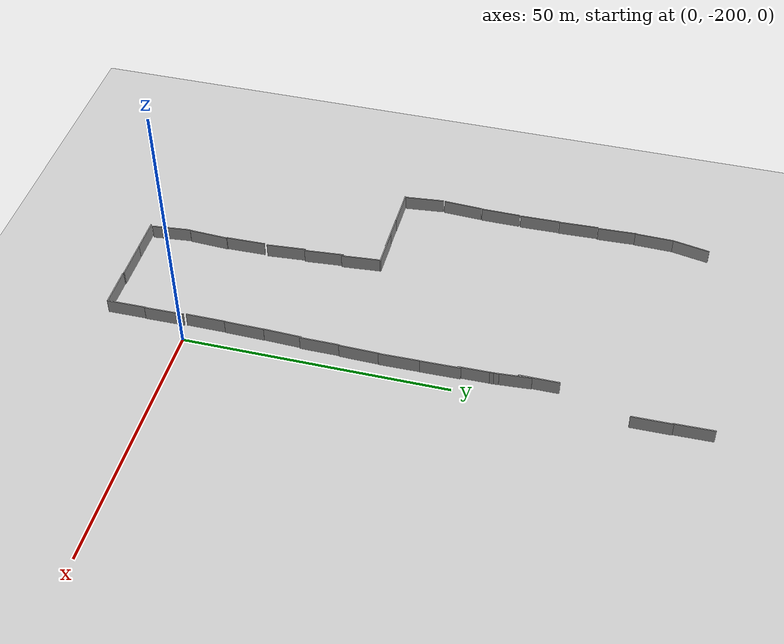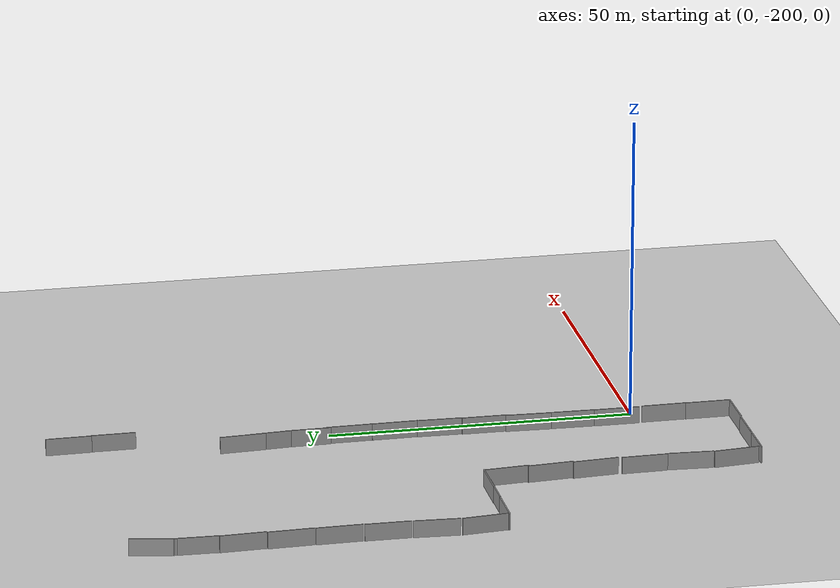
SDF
<sdf version="1.4">
 <world name="default">
  <model name="ground_plane">
   <static>1</static>
   <link name="link">
    <collision name="collision">
     <geometry><plane><normal>0 0 1</normal><size>100 100</size></plane></geometry>
     <surface><friction><ode><mu>100</mu><mu2>50</mu2></ode></friction></surface>
    </collision>
    <visual name="visual">
     <cast_shadows>0</cast_shadows>
     <geometry><plane><normal>0 0 1</normal><size>100 100</size></plane></geometry>
     <material>
      <script><uri>file://media/materials/scripts/gazebo.material</uri><name>Gazebo/Grey</name></script>
     </material>
    </visual>
    <velocity_decay><linear>0</linear><angular>0</angular></velocity_decay>
   </link>
  </model>
  <model name="grey_wall_1">
   <static>1</static>
   <link name="link">
    <pose>0 0 1.4 0 -0 0</pose>
    <collision name="collision"><geometry><box><size>7.5 0.2 2.8</size></box></geometry></collision>
    <visual name="visual">
     <cast_shadows>0</cast_shadows>
     <geometry><box><size>7.5 0.2 2.8</size></box></geometry>
     <material>
      <script>
       <uri>model://grey_wall/materials/scripts</uri>
       <uri>model://grey_wall/materials/textures</uri>
       <name>vrc/grey_wall</name>
      </script>
     </material>
    </visual>
    <velocity_decay><linear>0</linear><angular>0</angular></velocity_decay>
   </link>
   <pose>-44.8137 -113.805 0 0 0 -1.76709</pose>
  </model>
  <model name="grey_wall_88">
   <static>1</static>
   <link name="link">
    <pose>0 0 1.4 0 -0 0</pose>
    <collision name="collision"><geometry><box><size>7.5 0.2 2.8</size></box></geometry></collision>
    <visual name="visual">
     <cast_shadows>0</cast_shadows>
     <geometry><box><size>7.5 0.2 2.8</size></box></geometry>
     <material>
      <script>
       <uri>model://grey_wall/materials/scripts</uri>
       <uri>model://grey_wall/materials/textures</uri>
       <name>vrc/grey_wall</name>
      </script>
     </material>
    </visual>
    <velocity_decay><linear>0</linear><angular>0</angular></velocity_decay>
   </link>
   <pose>-45.5944 -127.853 0 0 0 -1.53046</pose>
  </model>
  <model name="grey_wall_94">
   <static>1</static>
   <link name="link">
    <pose>0 0 1.4 0 -0 0</pose>
    <collision name="collision"><geometry><box><size>7.5 0.2 2.8</size></box></geometry></collision>
    <visual name="visual">
     <cast_shadows>0</cast_shadows>
     <geometry><box><size>7.5 0.2 2.8</size></box></geometry>
     <material>
      <script>
       <uri>model://grey_wall/materials/scripts</uri>
       <uri>model://grey_wall/materials/textures</uri>
       <name>vrc/grey_wall</name>
      </script>
     </material>
    </visual>
    <velocity_decay><linear>0</linear><angular>0</angular></velocity_decay>
   </link>
   <pose>-45.5583 -120.709 0 0 0 -1.59393</pose>
  </model>
  <model name="grey_wall_95">
   <static>1</static>
   <link name="link">
    <pose>0 0 1.4 0 -0 0</pose>
    <collision name="collision"><geometry><box><size>7.5 0.2 2.8</size></box></geometry></collision>
    <visual name="visual">
     <cast_shadows>0</cast_shadows>
     <geometry><box><size>7.5 0.2 2.8</size></box></geometry>
     <material>
      <script>
       <uri>model://grey_wall/materials/scripts</uri>
       <uri>model://grey_wall/materials/textures</uri>
       <name>vrc/grey_wall</name>
      </script>
     </material>
    </visual>
    <velocity_decay><linear>0</linear><angular>0</angular></velocity_decay>
   </link>
   <pose>-45.5168 -135.428 0 0 0 -1.53425</pose>
  </model>
  <model name="grey_wall_96">
   <static>1</static>
   <link name="link">
    <pose>0 0 1.4 0 -0 0</pose>
    <collision name="collision"><geometry><box><size>7.5 0.2 2.8</size></box></geometry></collision>
    <visual name="visual">
     <cast_shadows>0</cast_shadows>
     <geometry><box><size>7.5 0.2 2.8</size></box></geometry>
     <material>
      <script>
       <uri>model://grey_wall/materials/scripts</uri>
       <uri>model://grey_wall/materials/textures</uri>
       <name>vrc/grey_wall</name>
      </script>
     </material>
    </visual>
    <velocity_decay><linear>0</linear><angular>0</angular></velocity_decay>
   </link>
   <pose>-45.3969 -143.067 0 0 0 -1.55107</pose>
  </model>
  <model name="grey_wall_97">
   <static>1</static>
   <link name="link">
    <pose>0 0 1.4 0 -0 0</pose>
    <collision name="collision"><geometry><box><size>7.5 0.2 2.8</size></box></geometry></collision>
    <visual name="visual">
     <cast_shadows>0</cast_shadows>
     <geometry><box><size>7.5 0.2 2.8</size></box></geometry>
     <material>
      <script>
       <uri>model://grey_wall/materials/scripts</uri>
       <uri>model://grey_wall/materials/textures</uri>
       <name>vrc/grey_wall</name>
      </script>
     </material>
    </visual>
    <velocity_decay><linear>0</linear><angular>0</angular></velocity_decay>
   </link>
   <pose>-45.4353 -150.768 0 0 0 -1.57468</pose>
  </model>
  <model name="grey_wall_98">
   <static>1</static>
   <link name="link">
    <pose>0 0 1.4 0 -0 0</pose>
    <collision name="collision"><geometry><box><size>7.5 0.2 2.8</size></box></geometry></collision>
    <visual name="visual">
     <cast_shadows>0</cast_shadows>
     <geometry><box><size>7.5 0.2 2.8</size></box></geometry>
     <material>
      <script>
       <uri>model://grey_wall/materials/scripts</uri>
       <uri>model://grey_wall/materials/textures</uri>
       <name>vrc/grey_wall</name>
      </script>
     </material>
    </visual>
    <velocity_decay><linear>0</linear><angular>0</angular></velocity_decay>
   </link>
   <pose>-45.7138 -158.404 0 0 0 -1.62018</pose>
  </model>
  <model name="grey_wall_99">
   <static>1</static>
   <link name="link">
    <pose>0 0 1.4 0 -0 0</pose>
    <collision name="collision"><geometry><box><size>7.5 0.2 2.8</size></box></geometry></collision>
    <visual name="visual">
     <cast_shadows>0</cast_shadows>
     <geometry><box><size>7.5 0.2 2.8</size></box></geometry>
     <material>
      <script>
       <uri>model://grey_wall/materials/scripts</uri>
       <uri>model://grey_wall/materials/textures</uri>
       <name>vrc/grey_wall</name>
      </script>
     </material>
    </visual>
    <velocity_decay><linear>0</linear><angular>0</angular></velocity_decay>
   </link>
   <pose>-45.5949 -166.141 0 0 0 -1.46895</pose>
  </model>
  <model name="grey_wall_100">
   <static>1</static>
   <link name="link">
    <pose>0 0 1.4 0 -0 0</pose>
    <collision name="collision"><geometry><box><size>7.5 0.2 2.8</size></box></geometry></collision>
    <visual name="visual">
     <cast_shadows>0</cast_shadows>
     <geometry><box><size>7.5 0.2 2.8</size></box></geometry>
     <material>
      <script>
       <uri>model://grey_wall/materials/scripts</uri>
       <uri>model://grey_wall/materials/textures</uri>
       <name>vrc/grey_wall</name>
      </script>
     </material>
    </visual>
    <velocity_decay><linear>0</linear><angular>0</angular></velocity_decay>
   </link>
   <pose>-26.1338 -173.754 0 0 0 -1.48651</pose>
  </model>
  <model name="grey_wall_101">
   <static>1</static>
   <link name="link">
    <pose>0 0 1.4 0 -0 0</pose>
    <collision name="collision"><geometry><box><size>7.5 0.2 2.8</size></box></geometry></collision>
    <visual name="visual">
     <cast_shadows>0</cast_shadows>
     <geometry><box><size>7.5 0.2 2.8</size></box></geometry>
     <material>
      <script>
       <uri>model://grey_wall/materials/scripts</uri>
       <uri>model://grey_wall/materials/textures</uri>
       <name>vrc/grey_wall</name>
      </script>
     </material>
    </visual>
    <velocity_decay><linear>0</linear><angular>0</angular></velocity_decay>
   </link>
   <pose>-34.3978 -170.076 0 0 -0 0</pose>
  </model>
  <model name="grey_wall_102">
   <static>1</static>
   <link name="link">
    <pose>0 0 1.4 0 -0 0</pose>
    <collision name="collision"><geometry><box><size>7.5 0.2 2.8</size></box></geometry></collision>
    <visual name="visual">
     <cast_shadows>0</cast_shadows>
     <geometry><box><size>7.5 0.2 2.8</size></box></geometry>
     <material>
      <script>
       <uri>model://grey_wall/materials/scripts</uri>
       <uri>model://grey_wall/materials/textures</uri>
       <name>vrc/grey_wall</name>
      </script>
     </material>
    </visual>
    <velocity_decay><linear>0</linear><angular>0</angular></velocity_decay>
   </link>
   <pose>-41.718 -170.035 0 0 -0 0</pose>
  </model>
  <model name="grey_wall_103">
   <static>1</static>
   <link name="link">
    <pose>0 0 1.4 0 -0 0</pose>
    <collision name="collision"><geometry><box><size>7.5 0.2 2.8</size></box></geometry></collision>
    <visual name="visual">
     <cast_shadows>0</cast_shadows>
     <geometry><box><size>7.5 0.2 2.8</size></box></geometry>
     <material>
      <script>
       <uri>model://grey_wall/materials/scripts</uri>
       <uri>model://grey_wall/materials/textures</uri>
       <name>vrc/grey_wall</name>
      </script>
     </material>
    </visual>
    <velocity_decay><linear>0</linear><angular>0</angular></velocity_decay>
   </link>
   <pose>-25.8412 -180.946 -0 0 0 -1.48832</pose>
  </model>
  <model name="grey_wall_104">
   <static>1</static>
   <link name="link">
    <pose>0 0 1.4 0 -0 0</pose>
    <collision name="collision"><geometry><box><size>7.5 0.2 2.8</size></box></geometry></collision>
    <visual name="visual">
     <cast_shadows>0</cast_shadows>
     <geometry><box><size>7.5 0.2 2.8</size></box></geometry>
     <material>
      <script>
       <uri>model://grey_wall/materials/scripts</uri>
       <uri>model://grey_wall/materials/textures</uri>
       <name>vrc/grey_wall</name>
      </script>
     </material>
    </visual>
    <velocity_decay><linear>0</linear><angular>0</angular></velocity_decay>
   </link>
   <pose>-25.5483 -188.347 0 0 0 -1.49288</pose>
  </model>
  <model name="grey_wall_105">
   <static>1</static>
   <link name="link">
    <pose>0 0 1.4 0 -0 0</pose>
    <collision name="collision"><geometry><box><size>7.5 0.2 2.8</size></box></geometry></collision>
    <visual name="visual">
     <cast_shadows>0</cast_shadows>
     <geometry><box><size>7.5 0.2 2.8</size></box></geometry>
     <material>
      <script>
       <uri>model://grey_wall/materials/scripts</uri>
       <uri>model://grey_wall/materials/textures</uri>
       <name>vrc/grey_wall</name>
      </script>
     </material>
    </visual>
    <velocity_decay><linear>0</linear><angular>0</angular></velocity_decay>
   </link>
   <pose>-25.2915 -211.477 0 0 0 -1.46654</pose>
  </model>
  <model name="grey_wall_106">
   <static>1</static>
   <link name="link">
    <pose>0 0 1.4 0 -0 0</pose>
    <collision name="collision"><geometry><box><size>7.5 0.2 2.8</size></box></geometry></collision>
    <visual name="visual">
     <cast_shadows>0</cast_shadows>
     <geometry><box><size>7.5 0.2 2.8</size></box></geometry>
     <material>
      <script>
       <uri>model://grey_wall/materials/scripts</uri>
       <uri>model://grey_wall/materials/textures</uri>
       <name>vrc/grey_wall</name>
      </script>
     </material>
    </visual>
    <velocity_decay><linear>0</linear><angular>0</angular></velocity_decay>
   </link>
   <pose>-3.72815 -189.416 0 0 0 -1.58779</pose>
  </model>
  <model name="grey_wall_107">
   <static>1</static>
   <link name="link">
    <pose>0 0 1.4 0 -0 0</pose>
    <collision name="collision"><geometry><box><size>7.5 0.2 2.8</size></box></geometry></collision>
    <visual name="visual">
     <cast_shadows>0</cast_shadows>
     <geometry><box><size>7.5 0.2 2.8</size></box></geometry>
     <material>
      <script>
       <uri>model://grey_wall/materials/scripts</uri>
       <uri>model://grey_wall/materials/textures</uri>
       <name>vrc/grey_wall</name>
      </script>
     </material>
    </visual>
    <velocity_decay><linear>0</linear><angular>0</angular></velocity_decay>
   </link>
   <pose>-25.3717 -196.39 0 0 0 -1.55159</pose>
  </model>
  <model name="grey_wall_108">
   <static>1</static>
   <link name="link">
    <pose>0 0 1.4 0 -0 0</pose>
    <collision name="collision"><geometry><box><size>7.5 0.2 2.8</size></box></geometry></collision>
    <visual name="visual">
     <cast_shadows>0</cast_shadows>
     <geometry><box><size>7.5 0.2 2.8</size></box></geometry>
     <material>
      <script>
       <uri>model://grey_wall/materials/scripts</uri>
       <uri>model://grey_wall/materials/textures</uri>
       <name>vrc/grey_wall</name>
      </script>
     </material>
    </visual>
    <velocity_decay><linear>0</linear><angular>0</angular></velocity_decay>
   </link>
   <pose>-25.3757 -203.911 0 0 0 -1.62025</pose>
  </model>
  <model name="grey_wall_109">
   <static>1</static>
   <link name="link">
    <pose>0 0 1.4 0 -0 0</pose>
    <collision name="collision"><geometry><box><size>7.5 0.2 2.8</size></box></geometry></collision>
    <visual name="visual">
     <cast_shadows>0</cast_shadows>
     <geometry><box><size>7.5 0.2 2.8</size></box></geometry>
     <material>
      <script>
       <uri>model://grey_wall/materials/scripts</uri>
       <uri>model://grey_wall/materials/textures</uri>
       <name>vrc/grey_wall</name>
      </script>
     </material>
    </visual>
    <velocity_decay><linear>0</linear><angular>0</angular></velocity_decay>
   </link>
   <pose>-3.66551 -212.059 0 0 0 -1.56377</pose>
  </model>
  <model name="grey_wall_110">
   <static>1</static>
   <link name="link">
    <pose>0 0 1.4 0 -0 0</pose>
    <collision name="collision"><geometry><box><size>7.5 0.2 2.8</size></box></geometry></collision>
    <visual name="visual">
     <cast_shadows>0</cast_shadows>
     <geometry><box><size>7.5 0.2 2.8</size></box></geometry>
     <material>
      <script>
       <uri>model://grey_wall/materials/scripts</uri>
       <uri>model://grey_wall/materials/textures</uri>
       <name>vrc/grey_wall</name>
      </script>
     </material>
    </visual>
    <velocity_decay><linear>0</linear><angular>0</angular></velocity_decay>
   </link>
   <pose>-3.65451 -204.749 0 0 0 -1.55833</pose>
  </model>
  <model name="grey_wall_111">
   <static>1</static>
   <link name="link">
    <pose>0 0 1.4 0 -0 0</pose>
    <collision name="collision"><geometry><box><size>7.5 0.2 2.8</size></box></geometry></collision>
    <visual name="visual">
     <cast_shadows>0</cast_shadows>
     <geometry><box><size>7.5 0.2 2.8</size></box></geometry>
     <material>
      <script>
       <uri>model://grey_wall/materials/scripts</uri>
       <uri>model://grey_wall/materials/textures</uri>
       <name>vrc/grey_wall</name>
      </script>
     </material>
    </visual>
    <velocity_decay><linear>0</linear><angular>0</angular></velocity_decay>
   </link>
   <pose>-3.85188 -196.779 0 0 0 -1.5739</pose>
  </model>
  <model name="grey_wall_112">
   <static>1</static>
   <link name="link">
    <pose>0 0 1.4 0 -0 0</pose>
    <collision name="collision"><geometry><box><size>7.5 0.2 2.8</size></box></geometry></collision>
    <visual name="visual">
     <cast_shadows>0</cast_shadows>
     <geometry><box><size>7.5 0.2 2.8</size></box></geometry>
     <material>
      <script>
       <uri>model://grey_wall/materials/scripts</uri>
       <uri>model://grey_wall/materials/textures</uri>
       <name>vrc/grey_wall</name>
      </script>
     </material>
    </visual>
    <velocity_decay><linear>0</linear><angular>0</angular></velocity_decay>
   </link>
   <pose>-30 -170 0 0 -0 0</pose>
  </model>
  <model name="grey_wall_113">
   <static>1</static>
   <link name="link">
    <pose>0 0 1.4 0 -0 0</pose>
    <collision name="collision"><geometry><box><size>7.5 0.2 2.8</size></box></geometry></collision>
    <visual name="visual">
     <cast_shadows>0</cast_shadows>
     <geometry><box><size>7.5 0.2 2.8</size></box></geometry>
     <material>
      <script>
       <uri>model://grey_wall/materials/scripts</uri>
       <uri>model://grey_wall/materials/textures</uri>
       <name>vrc/grey_wall</name>
      </script>
     </material>
    </visual>
    <velocity_decay><linear>0</linear><angular>0</angular></velocity_decay>
   </link>
   <pose>-21.5251 -215.596 0 0 -0 0</pose>
  </model>
  <model name="grey_wall_114">
   <static>1</static>
   <link name="link">
    <pose>0 0 1.4 0 -0 0</pose>
    <collision name="collision"><geometry><box><size>7.5 0.2 2.8</size></box></geometry></collision>
    <visual name="visual">
     <cast_shadows>0</cast_shadows>
     <geometry><box><size>7.5 0.2 2.8</size></box></geometry>
     <material>
      <script>
       <uri>model://grey_wall/materials/scripts</uri>
       <uri>model://grey_wall/materials/textures</uri>
       <name>vrc/grey_wall</name>
      </script>
     </material>
    </visual>
    <velocity_decay><linear>0</linear><angular>0</angular></velocity_decay>
   </link>
   <pose>-15 -215.593 0 0 -0 0</pose>
  </model>
  <model name="grey_wall_115">
   <static>1</static>
   <link name="link">
    <pose>0 0 1.4 0 -0 0</pose>
    <collision name="collision"><geometry><box><size>7.5 0.2 2.8</size></box></geometry></collision>
    <visual name="visual">
     <cast_shadows>0</cast_shadows>
     <geometry><box><size>7.5 0.2 2.8</size></box></geometry>
     <material>
      <script>
       <uri>model://grey_wall/materials/scripts</uri>
       <uri>model://grey_wall/materials/textures</uri>
       <name>vrc/grey_wall</name>
      </script>
     </material>
    </visual>
    <velocity_decay><linear>0</linear><angular>0</angular></velocity_decay>
   </link>
   <pose>-7.3406 -215.719 0 0 -0 0</pose>
  </model>
  <model name="grey_wall_116">
   <static>1</static>
   <link name="link">
    <pose>0 0 1.4 0 -0 0</pose>
    <collision name="collision"><geometry><box><size>7.5 0.2 2.8</size></box></geometry></collision>
    <visual name="visual">
     <cast_shadows>0</cast_shadows>
     <geometry><box><size>7.5 0.2 2.8</size></box></geometry>
     <material>
      <script>
       <uri>model://grey_wall/materials/scripts</uri>
       <uri>model://grey_wall/materials/textures</uri>
       <name>vrc/grey_wall</name>
      </script>
     </material>
    </visual>
    <velocity_decay><linear>0</linear><angular>0</angular></velocity_decay>
   </link>
   <pose>-3.5878 -182.192 0 0 0 -1.60448</pose>
  </model>
  <model name="grey_wall_117">
   <static>1</static>
   <link name="link">
    <pose>0 0 1.4 0 -0 0</pose>
    <collision name="collision"><geometry><box><size>7.5 0.2 2.8</size></box></geometry></collision>
    <visual name="visual">
     <cast_shadows>0</cast_shadows>
     <geometry><box><size>7.5 0.2 2.8</size></box></geometry>
     <material>
      <script>
       <uri>model://grey_wall/materials/scripts</uri>
       <uri>model://grey_wall/materials/textures</uri>
       <name>vrc/grey_wall</name>
      </script>
     </material>
    </visual>
    <velocity_decay><linear>0</linear><angular>0</angular></velocity_decay>
   </link>
   <pose>-3.27866 -175.036 0 0 -0 1.56829</pose>
  </model>
  <model name="grey_wall_118">
   <static>1</static>
   <link name="link">
    <pose>0 0 1.4 0 -0 0</pose>
    <collision name="collision"><geometry><box><size>7.5 0.2 2.8</size></box></geometry></collision>
    <visual name="visual">
     <cast_shadows>0</cast_shadows>
     <geometry><box><size>7.5 0.2 2.8</size></box></geometry>
     <material>
      <script>
       <uri>model://grey_wall/materials/scripts</uri>
       <uri>model://grey_wall/materials/textures</uri>
       <name>vrc/grey_wall</name>
      </script>
     </material>
    </visual>
    <velocity_decay><linear>0</linear><angular>0</angular></velocity_decay>
   </link>
   <pose>-3.06811 -167.689 0 0 -0 1.55139</pose>
  </model>
  <model name="grey_wall_119">
   <static>1</static>
   <link name="link">
    <pose>0 0 1.4 0 -0 0</pose>
    <collision name="collision"><geometry><box><size>7.5 0.2 2.8</size></box></geometry></collision>
    <visual name="visual">
     <cast_shadows>0</cast_shadows>
     <geometry><box><size>7.5 0.2 2.8</size></box></geometry>
     <material>
      <script>
       <uri>model://grey_wall/materials/scripts</uri>
       <uri>model://grey_wall/materials/textures</uri>
       <name>vrc/grey_wall</name>
      </script>
     </material>
    </visual>
    <velocity_decay><linear>0</linear><angular>0</angular></velocity_decay>
   </link>
   <pose>-2.98054 -160.297 0 0 -0 1.58472</pose>
  </model>
  <model name="grey_wall_120">
   <static>1</static>
   <link name="link">
    <pose>0 0 1.4 0 -0 0</pose>
    <collision name="collision"><geometry><box><size>7.5 0.2 2.8</size></box></geometry></collision>
    <visual name="visual">
     <cast_shadows>0</cast_shadows>
     <geometry><box><size>7.5 0.2 2.8</size></box></geometry>
     <material>
      <script>
       <uri>model://grey_wall/materials/scripts</uri>
       <uri>model://grey_wall/materials/textures</uri>
       <name>vrc/grey_wall</name>
      </script>
     </material>
    </visual>
    <velocity_decay><linear>0</linear><angular>0</angular></velocity_decay>
   </link>
   <pose>-3.05453 -152.774 0 0 -0 1.58499</pose>
  </model>
  <model name="grey_wall_121">
   <static>1</static>
   <link name="link">
    <pose>0 0 1.4 0 -0 0</pose>
    <collision name="collision"><geometry><box><size>7.5 0.2 2.8</size></box></geometry></collision>
    <visual name="visual">
     <cast_shadows>0</cast_shadows>
     <geometry><box><size>7.5 0.2 2.8</size></box></geometry>
     <material>
      <script>
       <uri>model://grey_wall/materials/scripts</uri>
       <uri>model://grey_wall/materials/textures</uri>
       <name>vrc/grey_wall</name>
      </script>
     </material>
    </visual>
    <velocity_decay><linear>0</linear><angular>0</angular></velocity_decay>
   </link>
   <pose>-3.58985 -140.174 -0 0 -0 1.63942</pose>
  </model>
  <model name="grey_wall_122">
   <static>1</static>
   <link name="link">
    <pose>0 0 1.4 0 -0 0</pose>
    <collision name="collision"><geometry><box><size>7.5 0.2 2.8</size></box></geometry></collision>
    <visual name="visual">
     <cast_shadows>0</cast_shadows>
     <geometry><box><size>7.5 0.2 2.8</size></box></geometry>
     <material>
      <script>
       <uri>model://grey_wall/materials/scripts</uri>
       <uri>model://grey_wall/materials/textures</uri>
       <name>vrc/grey_wall</name>
      </script>
     </material>
    </visual>
    <velocity_decay><linear>0</linear><angular>0</angular></velocity_decay>
   </link>
   <pose>-3.34931 -146.001 0 0 0 -1.55868</pose>
  </model>
  <model name="grey_wall_127">
   <static>1</static>
   <link name="link">
    <pose>0 0 1.4 0 -0 0</pose>
    <collision name="collision"><geometry><box><size>7.5 0.2 2.8</size></box></geometry></collision>
    <visual name="visual">
     <cast_shadows>0</cast_shadows>
     <geometry><box><size>7.5 0.2 2.8</size></box></geometry>
     <material>
      <script>
       <uri>model://grey_wall/materials/scripts</uri>
       <uri>model://grey_wall/materials/textures</uri>
       <name>vrc/grey_wall</name>
      </script>
     </material>
    </visual>
    <velocity_decay><linear>0</linear><angular>0</angular></velocity_decay>
   </link>
   <pose>0.70421 -114.788 0 0 0 -1.56159</pose>
  </model>
  <model name="grey_wall_129">
   <static>1</static>
   <link name="link">
    <pose>0 0 1.4 0 -0 0</pose>
    <collision name="collision"><geometry><box><size>7.5 0.2 2.8</size></box></geometry></collision>
    <visual name="visual">
     <cast_shadows>0</cast_shadows>
     <geometry><box><size>7.5 0.2 2.8</size></box></geometry>
     <material>
      <script>
       <uri>model://grey_wall/materials/scripts</uri>
       <uri>model://grey_wall/materials/textures</uri>
       <name>vrc/grey_wall</name>
      </script>
     </material>
    </visual>
    <velocity_decay><linear>0</linear><angular>0</angular></velocity_decay>
   </link>
   <pose>0.513222 -107.623 0 0 0 -1.5533</pose>
  </model>
  <model name="grey_wall_130">
   <static>1</static>
   <link name="link">
    <pose>0 0 1.4 0 -0 0</pose>
    <collision name="collision"><geometry><box><size>7.5 0.2 2.8</size></box></geometry></collision>
    <visual name="visual">
     <cast_shadows>0</cast_shadows>
     <geometry><box><size>7.5 0.2 2.8</size></box></geometry>
     <material>
      <script>
       <uri>model://grey_wall/materials/scripts</uri>
       <uri>model://grey_wall/materials/textures</uri>
       <name>vrc/grey_wall</name>
      </script>
     </material>
    </visual>
    <velocity_decay><linear>0</linear><angular>0</angular></velocity_decay>
   </link>
   <pose>-3.9599 -135.25 -4e-06 -0.000284 -0.017577 -1.55466</pose>
  </model>
 </world>
</sdf>
